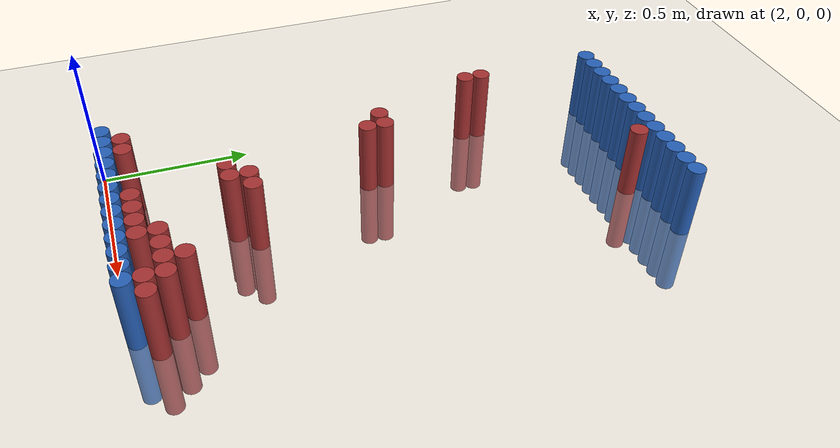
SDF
<sdf version="1.6">
 <world name="default">
  <model name="ground_plane">
   <static>1</static>
   <link name="link">
    <collision name="collision">
     <geometry><plane><normal>0 0 1</normal><size>100 100</size></plane></geometry>
     <surface><friction><ode><mu>100</mu><mu2>50</mu2></ode></friction></surface>
    </collision>
    <visual name="visual">
     <cast_shadows>0</cast_shadows>
     <geometry><plane><normal>0 0 1</normal><size>100 100</size></plane></geometry>
     <material>
      <script><uri>file://media/materials/scripts/gazebo.material</uri><name>Gazebo/Grey</name></script>
     </material>
    </visual>
   </link>
  </model>
  <model name="unit_cylinder_96">
   <static>1</static>
   <pose>2.130000 1.770000 0.000000 0.000000 0.000000 0.000000</pose>
   <link name="link">
    <inertial>
     <mass>1</mass>
     <inertia><ixx>0.145833</ixx><ixy>0</ixy><ixz>0</ixz><iyy>0.145833</iyy><iyz>0</iyz><izz>0.125</izz></inertia>
    </inertial>
    <collision name="collision">
     <geometry><cylinder><radius>0.030000</radius><length>0.5</length></cylinder></geometry>
    </collision>
    <visual name="visual">
     <geometry><cylinder><radius>0.030000</radius><length>0.5</length></cylinder></geometry>
     <material>
      <ambient>0.152000 0.379000 0.720000 1</ambient>
      <diffuse>0.152000 0.379000 0.720000 1</diffuse>
     </material>
     <material>
      <script><name>Gazebo/Grey</name><uri>file://media/materials/scripts/gazebo.material</uri></script>
     </material>
    </visual>
   </link>
  </model>
  <model name="unit_cylinder_97">
   <static>1</static>
   <pose>2.190000 1.770000 0.000000 0.000000 0.000000 0.000000</pose>
   <link name="link">
    <inertial>
     <mass>1</mass>
     <inertia><ixx>0.145833</ixx><ixy>0</ixy><ixz>0</ixz><iyy>0.145833</iyy><iyz>0</iyz><izz>0.125</izz></inertia>
    </inertial>
    <collision name="collision">
     <geometry><cylinder><radius>0.030000</radius><length>0.5</length></cylinder></geometry>
    </collision>
    <visual name="visual">
     <geometry><cylinder><radius>0.030000</radius><length>0.5</length></cylinder></geometry>
     <material>
      <ambient>0.152000 0.379000 0.720000 1</ambient>
      <diffuse>0.152000 0.379000 0.720000 1</diffuse>
     </material>
     <material>
      <script><name>Gazebo/Grey</name><uri>file://media/materials/scripts/gazebo.material</uri></script>
     </material>
    </visual>
   </link>
  </model>
  <model name="unit_cylinder_98">
   <static>1</static>
   <pose>2.250000 1.770000 0.000000 0.000000 0.000000 0.000000</pose>
   <link name="link">
    <inertial>
     <mass>1</mass>
     <inertia><ixx>0.145833</ixx><ixy>0</ixy><ixz>0</ixz><iyy>0.145833</iyy><iyz>0</iyz><izz>0.125</izz></inertia>
    </inertial>
    <collision name="collision">
     <geometry><cylinder><radius>0.030000</radius><length>0.5</length></cylinder></geometry>
    </collision>
    <visual name="visual">
     <geometry><cylinder><radius>0.030000</radius><length>0.5</length></cylinder></geometry>
     <material>
      <ambient>0.152000 0.379000 0.720000 1</ambient>
      <diffuse>0.152000 0.379000 0.720000 1</diffuse>
     </material>
     <material>
      <script><name>Gazebo/Grey</name><uri>file://media/materials/scripts/gazebo.material</uri></script>
     </material>
    </visual>
   </link>
  </model>
  <model name="unit_cylinder_99">
   <static>1</static>
   <pose>2.310000 1.770000 0.000000 0.000000 0.000000 0.000000</pose>
   <link name="link">
    <inertial>
     <mass>1</mass>
     <inertia><ixx>0.145833</ixx><ixy>0</ixy><ixz>0</ixz><iyy>0.145833</iyy><iyz>0</iyz><izz>0.125</izz></inertia>
    </inertial>
    <collision name="collision">
     <geometry><cylinder><radius>0.030000</radius><length>0.5</length></cylinder></geometry>
    </collision>
    <visual name="visual">
     <geometry><cylinder><radius>0.030000</radius><length>0.5</length></cylinder></geometry>
     <material>
      <ambient>0.152000 0.379000 0.720000 1</ambient>
      <diffuse>0.152000 0.379000 0.720000 1</diffuse>
     </material>
     <material>
      <script><name>Gazebo/Grey</name><uri>file://media/materials/scripts/gazebo.material</uri></script>
     </material>
    </visual>
   </link>
  </model>
  <model name="unit_cylinder_100">
   <static>1</static>
   <pose>2.370000 1.770000 0.000000 0.000000 0.000000 0.000000</pose>
   <link name="link">
    <inertial>
     <mass>1</mass>
     <inertia><ixx>0.145833</ixx><ixy>0</ixy><ixz>0</ixz><iyy>0.145833</iyy><iyz>0</iyz><izz>0.125</izz></inertia>
    </inertial>
    <collision name="collision">
     <geometry><cylinder><radius>0.030000</radius><length>0.5</length></cylinder></geometry>
    </collision>
    <visual name="visual">
     <geometry><cylinder><radius>0.030000</radius><length>0.5</length></cylinder></geometry>
     <material>
      <ambient>0.152000 0.379000 0.720000 1</ambient>
      <diffuse>0.152000 0.379000 0.720000 1</diffuse>
     </material>
     <material>
      <script><name>Gazebo/Grey</name><uri>file://media/materials/scripts/gazebo.material</uri></script>
     </material>
    </visual>
   </link>
  </model>
  <model name="unit_cylinder_101">
   <static>1</static>
   <pose>2.430000 1.770000 0.000000 0.000000 0.000000 0.000000</pose>
   <link name="link">
    <inertial>
     <mass>1</mass>
     <inertia><ixx>0.145833</ixx><ixy>0</ixy><ixz>0</ixz><iyy>0.145833</iyy><iyz>0</iyz><izz>0.125</izz></inertia>
    </inertial>
    <collision name="collision">
     <geometry><cylinder><radius>0.030000</radius><length>0.5</length></cylinder></geometry>
    </collision>
    <visual name="visual">
     <geometry><cylinder><radius>0.030000</radius><length>0.5</length></cylinder></geometry>
     <material>
      <ambient>0.152000 0.379000 0.720000 1</ambient>
      <diffuse>0.152000 0.379000 0.720000 1</diffuse>
     </material>
     <material>
      <script><name>Gazebo/Grey</name><uri>file://media/materials/scripts/gazebo.material</uri></script>
     </material>
    </visual>
   </link>
  </model>
  <model name="unit_cylinder_102">
   <static>1</static>
   <pose>2.490000 1.770000 0.000000 0.000000 0.000000 0.000000</pose>
   <link name="link">
    <inertial>
     <mass>1</mass>
     <inertia><ixx>0.145833</ixx><ixy>0</ixy><ixz>0</ixz><iyy>0.145833</iyy><iyz>0</iyz><izz>0.125</izz></inertia>
    </inertial>
    <collision name="collision">
     <geometry><cylinder><radius>0.030000</radius><length>0.5</length></cylinder></geometry>
    </collision>
    <visual name="visual">
     <geometry><cylinder><radius>0.030000</radius><length>0.5</length></cylinder></geometry>
     <material>
      <ambient>0.152000 0.379000 0.720000 1</ambient>
      <diffuse>0.152000 0.379000 0.720000 1</diffuse>
     </material>
     <material>
      <script><name>Gazebo/Grey</name><uri>file://media/materials/scripts/gazebo.material</uri></script>
     </material>
    </visual>
   </link>
  </model>
  <model name="unit_cylinder_103">
   <static>1</static>
   <pose>2.550000 1.770000 0.000000 0.000000 0.000000 0.000000</pose>
   <link name="link">
    <inertial>
     <mass>1</mass>
     <inertia><ixx>0.145833</ixx><ixy>0</ixy><ixz>0</ixz><iyy>0.145833</iyy><iyz>0</iyz><izz>0.125</izz></inertia>
    </inertial>
    <collision name="collision">
     <geometry><cylinder><radius>0.030000</radius><length>0.5</length></cylinder></geometry>
    </collision>
    <visual name="visual">
     <geometry><cylinder><radius>0.030000</radius><length>0.5</length></cylinder></geometry>
     <material>
      <ambient>0.152000 0.379000 0.720000 1</ambient>
      <diffuse>0.152000 0.379000 0.720000 1</diffuse>
     </material>
     <material>
      <script><name>Gazebo/Grey</name><uri>file://media/materials/scripts/gazebo.material</uri></script>
     </material>
    </visual>
   </link>
  </model>
  <model name="unit_cylinder_104">
   <static>1</static>
   <pose>2.610000 1.770000 0.000000 0.000000 0.000000 0.000000</pose>
   <link name="link">
    <inertial>
     <mass>1</mass>
     <inertia><ixx>0.145833</ixx><ixy>0</ixy><ixz>0</ixz><iyy>0.145833</iyy><iyz>0</iyz><izz>0.125</izz></inertia>
    </inertial>
    <collision name="collision">
     <geometry><cylinder><radius>0.030000</radius><length>0.5</length></cylinder></geometry>
    </collision>
    <visual name="visual">
     <geometry><cylinder><radius>0.030000</radius><length>0.5</length></cylinder></geometry>
     <material>
      <ambient>0.152000 0.379000 0.720000 1</ambient>
      <diffuse>0.152000 0.379000 0.720000 1</diffuse>
     </material>
     <material>
      <script><name>Gazebo/Grey</name><uri>file://media/materials/scripts/gazebo.material</uri></script>
     </material>
    </visual>
   </link>
  </model>
  <model name="unit_cylinder_105">
   <static>1</static>
   <pose>2.670000 1.770000 0.000000 0.000000 0.000000 0.000000</pose>
   <link name="link">
    <inertial>
     <mass>1</mass>
     <inertia><ixx>0.145833</ixx><ixy>0</ixy><ixz>0</ixz><iyy>0.145833</iyy><iyz>0</iyz><izz>0.125</izz></inertia>
    </inertial>
    <collision name="collision">
     <geometry><cylinder><radius>0.030000</radius><length>0.5</length></cylinder></geometry>
    </collision>
    <visual name="visual">
     <geometry><cylinder><radius>0.030000</radius><length>0.5</length></cylinder></geometry>
     <material>
      <ambient>0.152000 0.379000 0.720000 1</ambient>
      <diffuse>0.152000 0.379000 0.720000 1</diffuse>
     </material>
     <material>
      <script><name>Gazebo/Grey</name><uri>file://media/materials/scripts/gazebo.material</uri></script>
     </material>
    </visual>
   </link>
  </model>
  <model name="unit_cylinder_106">
   <static>1</static>
   <pose>2.730000 1.770000 0.000000 0.000000 0.000000 0.000000</pose>
   <link name="link">
    <inertial>
     <mass>1</mass>
     <inertia><ixx>0.145833</ixx><ixy>0</ixy><ixz>0</ixz><iyy>0.145833</iyy><iyz>0</iyz><izz>0.125</izz></inertia>
    </inertial>
    <collision name="collision">
     <geometry><cylinder><radius>0.030000</radius><length>0.5</length></cylinder></geometry>
    </collision>
    <visual name="visual">
     <geometry><cylinder><radius>0.030000</radius><length>0.5</length></cylinder></geometry>
     <material>
      <ambient>0.152000 0.379000 0.720000 1</ambient>
      <diffuse>0.152000 0.379000 0.720000 1</diffuse>
     </material>
     <material>
      <script><name>Gazebo/Grey</name><uri>file://media/materials/scripts/gazebo.material</uri></script>
     </material>
    </visual>
   </link>
  </model>
  <model name="unit_cylinder_107">
   <static>1</static>
   <pose>2.790000 1.770000 0.000000 0.000000 0.000000 0.000000</pose>
   <link name="link">
    <inertial>
     <mass>1</mass>
     <inertia><ixx>0.145833</ixx><ixy>0</ixy><ixz>0</ixz><iyy>0.145833</iyy><iyz>0</iyz><izz>0.125</izz></inertia>
    </inertial>
    <collision name="collision">
     <geometry><cylinder><radius>0.030000</radius><length>0.5</length></cylinder></geometry>
    </collision>
    <visual name="visual">
     <geometry><cylinder><radius>0.030000</radius><length>0.5</length></cylinder></geometry>
     <material>
      <ambient>0.152000 0.379000 0.720000 1</ambient>
      <diffuse>0.152000 0.379000 0.720000 1</diffuse>
     </material>
     <material>
      <script><name>Gazebo/Grey</name><uri>file://media/materials/scripts/gazebo.material</uri></script>
     </material>
    </visual>
   </link>
  </model>
  <model name="unit_cylinder_108">
   <static>1</static>
   <pose>2.850000 1.770000 0.000000 0.000000 0.000000 0.000000</pose>
   <link name="link">
    <inertial>
     <mass>1</mass>
     <inertia><ixx>0.145833</ixx><ixy>0</ixy><ixz>0</ixz><iyy>0.145833</iyy><iyz>0</iyz><izz>0.125</izz></inertia>
    </inertial>
    <collision name="collision">
     <geometry><cylinder><radius>0.030000</radius><length>0.5</length></cylinder></geometry>
    </collision>
    <visual name="visual">
     <geometry><cylinder><radius>0.030000</radius><length>0.5</length></cylinder></geometry>
     <material>
      <ambient>0.152000 0.379000 0.720000 1</ambient>
      <diffuse>0.152000 0.379000 0.720000 1</diffuse>
     </material>
     <material>
      <script><name>Gazebo/Grey</name><uri>file://media/materials/scripts/gazebo.material</uri></script>
     </material>
    </visual>
   </link>
  </model>
  <model name="unit_cylinder_125">
   <static>1</static>
   <pose>2.610000 1.710000 0.000000 0.000000 0.000000 0.000000</pose>
   <link name="link">
    <inertial>
     <mass>1</mass>
     <inertia><ixx>0.145833</ixx><ixy>0</ixy><ixz>0</ixz><iyy>0.145833</iyy><iyz>0</iyz><izz>0.125</izz></inertia>
    </inertial>
    <collision name="collision">
     <geometry><cylinder><radius>0.030000</radius><length>0.5</length></cylinder></geometry>
    </collision>
    <visual name="visual">
     <geometry><cylinder><radius>0.030000</radius><length>0.5</length></cylinder></geometry>
     <material>
      <ambient>0.648000 0.192000 0.192000 1</ambient>
      <diffuse>0.648000 0.192000 0.192000 1</diffuse>
     </material>
     <material>
      <script><name>Gazebo/Grey</name><uri>file://media/materials/scripts/gazebo.material</uri></script>
     </material>
    </visual>
   </link>
  </model>
  <model name="unit_cylinder_146">
   <static>1</static>
   <pose>2.130000 1.350000 0.000000 0.000000 0.000000 0.000000</pose>
   <link name="link">
    <inertial>
     <mass>1</mass>
     <inertia><ixx>0.145833</ixx><ixy>0</ixy><ixz>0</ixz><iyy>0.145833</iyy><iyz>0</iyz><izz>0.125</izz></inertia>
    </inertial>
    <collision name="collision">
     <geometry><cylinder><radius>0.030000</radius><length>0.5</length></cylinder></geometry>
    </collision>
    <visual name="visual">
     <geometry><cylinder><radius>0.030000</radius><length>0.5</length></cylinder></geometry>
     <material>
      <ambient>0.648000 0.192000 0.192000 1</ambient>
      <diffuse>0.648000 0.192000 0.192000 1</diffuse>
     </material>
     <material>
      <script><name>Gazebo/Grey</name><uri>file://media/materials/scripts/gazebo.material</uri></script>
     </material>
    </visual>
   </link>
  </model>
  <model name="unit_cylinder_147">
   <static>1</static>
   <pose>2.130000 1.290000 0.000000 0.000000 0.000000 0.000000</pose>
   <link name="link">
    <inertial>
     <mass>1</mass>
     <inertia><ixx>0.145833</ixx><ixy>0</ixy><ixz>0</ixz><iyy>0.145833</iyy><iyz>0</iyz><izz>0.125</izz></inertia>
    </inertial>
    <collision name="collision">
     <geometry><cylinder><radius>0.030000</radius><length>0.5</length></cylinder></geometry>
    </collision>
    <visual name="visual">
     <geometry><cylinder><radius>0.030000</radius><length>0.5</length></cylinder></geometry>
     <material>
      <ambient>0.648000 0.192000 0.192000 1</ambient>
      <diffuse>0.648000 0.192000 0.192000 1</diffuse>
     </material>
     <material>
      <script><name>Gazebo/Grey</name><uri>file://media/materials/scripts/gazebo.material</uri></script>
     </material>
    </visual>
   </link>
  </model>
  <model name="unit_cylinder_156">
   <static>1</static>
   <pose>2.250000 0.930000 0.000000 0.000000 0.000000 0.000000</pose>
   <link name="link">
    <inertial>
     <mass>1</mass>
     <inertia><ixx>0.145833</ixx><ixy>0</ixy><ixz>0</ixz><iyy>0.145833</iyy><iyz>0</iyz><izz>0.125</izz></inertia>
    </inertial>
    <collision name="collision">
     <geometry><cylinder><radius>0.030000</radius><length>0.5</length></cylinder></geometry>
    </collision>
    <visual name="visual">
     <geometry><cylinder><radius>0.030000</radius><length>0.5</length></cylinder></geometry>
     <material>
      <ambient>0.648000 0.192000 0.192000 1</ambient>
      <diffuse>0.648000 0.192000 0.192000 1</diffuse>
     </material>
     <material>
      <script><name>Gazebo/Grey</name><uri>file://media/materials/scripts/gazebo.material</uri></script>
     </material>
    </visual>
   </link>
  </model>
  <model name="unit_cylinder_157">
   <static>1</static>
   <pose>2.310000 0.930000 0.000000 0.000000 0.000000 0.000000</pose>
   <link name="link">
    <inertial>
     <mass>1</mass>
     <inertia><ixx>0.145833</ixx><ixy>0</ixy><ixz>0</ixz><iyy>0.145833</iyy><iyz>0</iyz><izz>0.125</izz></inertia>
    </inertial>
    <collision name="collision">
     <geometry><cylinder><radius>0.030000</radius><length>0.5</length></cylinder></geometry>
    </collision>
    <visual name="visual">
     <geometry><cylinder><radius>0.030000</radius><length>0.5</length></cylinder></geometry>
     <material>
      <ambient>0.648000 0.192000 0.192000 1</ambient>
      <diffuse>0.648000 0.192000 0.192000 1</diffuse>
     </material>
     <material>
      <script><name>Gazebo/Grey</name><uri>file://media/materials/scripts/gazebo.material</uri></script>
     </material>
    </visual>
   </link>
  </model>
  <model name="unit_cylinder_158">
   <static>1</static>
   <pose>2.310000 0.870000 0.000000 0.000000 0.000000 0.000000</pose>
   <link name="link">
    <inertial>
     <mass>1</mass>
     <inertia><ixx>0.145833</ixx><ixy>0</ixy><ixz>0</ixz><iyy>0.145833</iyy><iyz>0</iyz><izz>0.125</izz></inertia>
    </inertial>
    <collision name="collision">
     <geometry><cylinder><radius>0.030000</radius><length>0.5</length></cylinder></geometry>
    </collision>
    <visual name="visual">
     <geometry><cylinder><radius>0.030000</radius><length>0.5</length></cylinder></geometry>
     <material>
      <ambient>0.648000 0.192000 0.192000 1</ambient>
      <diffuse>0.648000 0.192000 0.192000 1</diffuse>
     </material>
     <material>
      <script><name>Gazebo/Grey</name><uri>file://media/materials/scripts/gazebo.material</uri></script>
     </material>
    </visual>
   </link>
  </model>
  <model name="unit_cylinder_183">
   <static>1</static>
   <pose>2.430000 0.450000 0.000000 0.000000 0.000000 0.000000</pose>
   <link name="link">
    <inertial>
     <mass>1</mass>
     <inertia><ixx>0.145833</ixx><ixy>0</ixy><ixz>0</ixz><iyy>0.145833</iyy><iyz>0</iyz><izz>0.125</izz></inertia>
    </inertial>
    <collision name="collision">
     <geometry><cylinder><radius>0.030000</radius><length>0.5</length></cylinder></geometry>
    </collision>
    <visual name="visual">
     <geometry><cylinder><radius>0.030000</radius><length>0.5</length></cylinder></geometry>
     <material>
      <ambient>0.648000 0.192000 0.192000 1</ambient>
      <diffuse>0.648000 0.192000 0.192000 1</diffuse>
     </material>
     <material>
      <script><name>Gazebo/Grey</name><uri>file://media/materials/scripts/gazebo.material</uri></script>
     </material>
    </visual>
   </link>
  </model>
  <model name="unit_cylinder_184">
   <static>1</static>
   <pose>2.490000 0.450000 0.000000 0.000000 0.000000 0.000000</pose>
   <link name="link">
    <inertial>
     <mass>1</mass>
     <inertia><ixx>0.145833</ixx><ixy>0</ixy><ixz>0</ixz><iyy>0.145833</iyy><iyz>0</iyz><izz>0.125</izz></inertia>
    </inertial>
    <collision name="collision">
     <geometry><cylinder><radius>0.030000</radius><length>0.5</length></cylinder></geometry>
    </collision>
    <visual name="visual">
     <geometry><cylinder><radius>0.030000</radius><length>0.5</length></cylinder></geometry>
     <material>
      <ambient>0.648000 0.192000 0.192000 1</ambient>
      <diffuse>0.648000 0.192000 0.192000 1</diffuse>
     </material>
     <material>
      <script><name>Gazebo/Grey</name><uri>file://media/materials/scripts/gazebo.material</uri></script>
     </material>
    </visual>
   </link>
  </model>
  <model name="unit_cylinder_185">
   <static>1</static>
   <pose>2.370000 0.390000 0.000000 0.000000 0.000000 0.000000</pose>
   <link name="link">
    <inertial>
     <mass>1</mass>
     <inertia><ixx>0.145833</ixx><ixy>0</ixy><ixz>0</ixz><iyy>0.145833</iyy><iyz>0</iyz><izz>0.125</izz></inertia>
    </inertial>
    <collision name="collision">
     <geometry><cylinder><radius>0.030000</radius><length>0.5</length></cylinder></geometry>
    </collision>
    <visual name="visual">
     <geometry><cylinder><radius>0.030000</radius><length>0.5</length></cylinder></geometry>
     <material>
      <ambient>0.648000 0.192000 0.192000 1</ambient>
      <diffuse>0.648000 0.192000 0.192000 1</diffuse>
     </material>
     <material>
      <script><name>Gazebo/Grey</name><uri>file://media/materials/scripts/gazebo.material</uri></script>
     </material>
    </visual>
   </link>
  </model>
  <model name="unit_cylinder_186">
   <static>1</static>
   <pose>2.430000 0.390000 0.000000 0.000000 0.000000 0.000000</pose>
   <link name="link">
    <inertial>
     <mass>1</mass>
     <inertia><ixx>0.145833</ixx><ixy>0</ixy><ixz>0</ixz><iyy>0.145833</iyy><iyz>0</iyz><izz>0.125</izz></inertia>
    </inertial>
    <collision name="collision">
     <geometry><cylinder><radius>0.030000</radius><length>0.5</length></cylinder></geometry>
    </collision>
    <visual name="visual">
     <geometry><cylinder><radius>0.030000</radius><length>0.5</length></cylinder></geometry>
     <material>
      <ambient>0.648000 0.192000 0.192000 1</ambient>
      <diffuse>0.648000 0.192000 0.192000 1</diffuse>
     </material>
     <material>
      <script><name>Gazebo/Grey</name><uri>file://media/materials/scripts/gazebo.material</uri></script>
     </material>
    </visual>
   </link>
  </model>
  <model name="unit_cylinder_187">
   <static>1</static>
   <pose>2.730000 0.210000 0.000000 0.000000 0.000000 0.000000</pose>
   <link name="link">
    <inertial>
     <mass>1</mass>
     <inertia><ixx>0.145833</ixx><ixy>0</ixy><ixz>0</ixz><iyy>0.145833</iyy><iyz>0</iyz><izz>0.125</izz></inertia>
    </inertial>
    <collision name="collision">
     <geometry><cylinder><radius>0.030000</radius><length>0.5</length></cylinder></geometry>
    </collision>
    <visual name="visual">
     <geometry><cylinder><radius>0.030000</radius><length>0.5</length></cylinder></geometry>
     <material>
      <ambient>0.648000 0.192000 0.192000 1</ambient>
      <diffuse>0.648000 0.192000 0.192000 1</diffuse>
     </material>
     <material>
      <script><name>Gazebo/Grey</name><uri>file://media/materials/scripts/gazebo.material</uri></script>
     </material>
    </visual>
   </link>
  </model>
  <model name="unit_cylinder_189">
   <static>1</static>
   <pose>2.610000 0.150000 0.000000 0.000000 0.000000 0.000000</pose>
   <link name="link">
    <inertial>
     <mass>1</mass>
     <inertia><ixx>0.145833</ixx><ixy>0</ixy><ixz>0</ixz><iyy>0.145833</iyy><iyz>0</iyz><izz>0.125</izz></inertia>
    </inertial>
    <collision name="collision">
     <geometry><cylinder><radius>0.030000</radius><length>0.5</length></cylinder></geometry>
    </collision>
    <visual name="visual">
     <geometry><cylinder><radius>0.030000</radius><length>0.5</length></cylinder></geometry>
     <material>
      <ambient>0.648000 0.192000 0.192000 1</ambient>
      <diffuse>0.648000 0.192000 0.192000 1</diffuse>
     </material>
     <material>
      <script><name>Gazebo/Grey</name><uri>file://media/materials/scripts/gazebo.material</uri></script>
     </material>
    </visual>
   </link>
  </model>
  <model name="unit_cylinder_190">
   <static>1</static>
   <pose>2.670000 0.150000 0.000000 0.000000 0.000000 0.000000</pose>
   <link name="link">
    <inertial>
     <mass>1</mass>
     <inertia><ixx>0.145833</ixx><ixy>0</ixy><ixz>0</ixz><iyy>0.145833</iyy><iyz>0</iyz><izz>0.125</izz></inertia>
    </inertial>
    <collision name="collision">
     <geometry><cylinder><radius>0.030000</radius><length>0.5</length></cylinder></geometry>
    </collision>
    <visual name="visual">
     <geometry><cylinder><radius>0.030000</radius><length>0.5</length></cylinder></geometry>
     <material>
      <ambient>0.648000 0.192000 0.192000 1</ambient>
      <diffuse>0.648000 0.192000 0.192000 1</diffuse>
     </material>
     <material>
      <script><name>Gazebo/Grey</name><uri>file://media/materials/scripts/gazebo.material</uri></script>
     </material>
    </visual>
   </link>
  </model>
  <model name="unit_cylinder_191">
   <static>1</static>
   <pose>2.730000 0.150000 0.000000 0.000000 0.000000 0.000000</pose>
   <link name="link">
    <inertial>
     <mass>1</mass>
     <inertia><ixx>0.145833</ixx><ixy>0</ixy><ixz>0</ixz><iyy>0.145833</iyy><iyz>0</iyz><izz>0.125</izz></inertia>
    </inertial>
    <collision name="collision">
     <geometry><cylinder><radius>0.030000</radius><length>0.5</length></cylinder></geometry>
    </collision>
    <visual name="visual">
     <geometry><cylinder><radius>0.030000</radius><length>0.5</length></cylinder></geometry>
     <material>
      <ambient>0.648000 0.192000 0.192000 1</ambient>
      <diffuse>0.648000 0.192000 0.192000 1</diffuse>
     </material>
     <material>
      <script><name>Gazebo/Grey</name><uri>file://media/materials/scripts/gazebo.material</uri></script>
     </material>
    </visual>
   </link>
  </model>
  <model name="unit_cylinder_192">
   <static>1</static>
   <pose>2.790000 0.150000 0.000000 0.000000 0.000000 0.000000</pose>
   <link name="link">
    <inertial>
     <mass>1</mass>
     <inertia><ixx>0.145833</ixx><ixy>0</ixy><ixz>0</ixz><iyy>0.145833</iyy><iyz>0</iyz><izz>0.125</izz></inertia>
    </inertial>
    <collision name="collision">
     <geometry><cylinder><radius>0.030000</radius><length>0.5</length></cylinder></geometry>
    </collision>
    <visual name="visual">
     <geometry><cylinder><radius>0.030000</radius><length>0.5</length></cylinder></geometry>
     <material>
      <ambient>0.648000 0.192000 0.192000 1</ambient>
      <diffuse>0.648000 0.192000 0.192000 1</diffuse>
     </material>
     <material>
      <script><name>Gazebo/Grey</name><uri>file://media/materials/scripts/gazebo.material</uri></script>
     </material>
    </visual>
   </link>
  </model>
  <model name="unit_cylinder_197">
   <static>1</static>
   <pose>2.130000 0.090000 0.000000 0.000000 0.000000 0.000000</pose>
   <link name="link">
    <inertial>
     <mass>1</mass>
     <inertia><ixx>0.145833</ixx><ixy>0</ixy><ixz>0</ixz><iyy>0.145833</iyy><iyz>0</iyz><izz>0.125</izz></inertia>
    </inertial>
    <collision name="collision">
     <geometry><cylinder><radius>0.030000</radius><length>0.5</length></cylinder></geometry>
    </collision>
    <visual name="visual">
     <geometry><cylinder><radius>0.030000</radius><length>0.5</length></cylinder></geometry>
     <material>
      <ambient>0.648000 0.192000 0.192000 1</ambient>
      <diffuse>0.648000 0.192000 0.192000 1</diffuse>
     </material>
     <material>
      <script><name>Gazebo/Grey</name><uri>file://media/materials/scripts/gazebo.material</uri></script>
     </material>
    </visual>
   </link>
  </model>
  <model name="unit_cylinder_198">
   <static>1</static>
   <pose>2.190000 0.090000 0.000000 0.000000 0.000000 0.000000</pose>
   <link name="link">
    <inertial>
     <mass>1</mass>
     <inertia><ixx>0.145833</ixx><ixy>0</ixy><ixz>0</ixz><iyy>0.145833</iyy><iyz>0</iyz><izz>0.125</izz></inertia>
    </inertial>
    <collision name="collision">
     <geometry><cylinder><radius>0.030000</radius><length>0.5</length></cylinder></geometry>
    </collision>
    <visual name="visual">
     <geometry><cylinder><radius>0.030000</radius><length>0.5</length></cylinder></geometry>
     <material>
      <ambient>0.648000 0.192000 0.192000 1</ambient>
      <diffuse>0.648000 0.192000 0.192000 1</diffuse>
     </material>
     <material>
      <script><name>Gazebo/Grey</name><uri>file://media/materials/scripts/gazebo.material</uri></script>
     </material>
    </visual>
   </link>
  </model>
  <model name="unit_cylinder_199">
   <static>1</static>
   <pose>2.430000 0.090000 0.000000 0.000000 0.000000 0.000000</pose>
   <link name="link">
    <inertial>
     <mass>1</mass>
     <inertia><ixx>0.145833</ixx><ixy>0</ixy><ixz>0</ixz><iyy>0.145833</iyy><iyz>0</iyz><izz>0.125</izz></inertia>
    </inertial>
    <collision name="collision">
     <geometry><cylinder><radius>0.030000</radius><length>0.5</length></cylinder></geometry>
    </collision>
    <visual name="visual">
     <geometry><cylinder><radius>0.030000</radius><length>0.5</length></cylinder></geometry>
     <material>
      <ambient>0.648000 0.192000 0.192000 1</ambient>
      <diffuse>0.648000 0.192000 0.192000 1</diffuse>
     </material>
     <material>
      <script><name>Gazebo/Grey</name><uri>file://media/materials/scripts/gazebo.material</uri></script>
     </material>
    </visual>
   </link>
  </model>
  <model name="unit_cylinder_200">
   <static>1</static>
   <pose>2.490000 0.090000 0.000000 0.000000 0.000000 0.000000</pose>
   <link name="link">
    <inertial>
     <mass>1</mass>
     <inertia><ixx>0.145833</ixx><ixy>0</ixy><ixz>0</ixz><iyy>0.145833</iyy><iyz>0</iyz><izz>0.125</izz></inertia>
    </inertial>
    <collision name="collision">
     <geometry><cylinder><radius>0.030000</radius><length>0.5</length></cylinder></geometry>
    </collision>
    <visual name="visual">
     <geometry><cylinder><radius>0.030000</radius><length>0.5</length></cylinder></geometry>
     <material>
      <ambient>0.648000 0.192000 0.192000 1</ambient>
      <diffuse>0.648000 0.192000 0.192000 1</diffuse>
     </material>
     <material>
      <script><name>Gazebo/Grey</name><uri>file://media/materials/scripts/gazebo.material</uri></script>
     </material>
    </visual>
   </link>
  </model>
  <model name="unit_cylinder_201">
   <static>1</static>
   <pose>2.550000 0.090000 0.000000 0.000000 0.000000 0.000000</pose>
   <link name="link">
    <inertial>
     <mass>1</mass>
     <inertia><ixx>0.145833</ixx><ixy>0</ixy><ixz>0</ixz><iyy>0.145833</iyy><iyz>0</iyz><izz>0.125</izz></inertia>
    </inertial>
    <collision name="collision">
     <geometry><cylinder><radius>0.030000</radius><length>0.5</length></cylinder></geometry>
    </collision>
    <visual name="visual">
     <geometry><cylinder><radius>0.030000</radius><length>0.5</length></cylinder></geometry>
     <material>
      <ambient>0.648000 0.192000 0.192000 1</ambient>
      <diffuse>0.648000 0.192000 0.192000 1</diffuse>
     </material>
     <material>
      <script><name>Gazebo/Grey</name><uri>file://media/materials/scripts/gazebo.material</uri></script>
     </material>
    </visual>
   </link>
  </model>
  <model name="unit_cylinder_202">
   <static>1</static>
   <pose>2.610000 0.090000 0.000000 0.000000 0.000000 0.000000</pose>
   <link name="link">
    <inertial>
     <mass>1</mass>
     <inertia><ixx>0.145833</ixx><ixy>0</ixy><ixz>0</ixz><iyy>0.145833</iyy><iyz>0</iyz><izz>0.125</izz></inertia>
    </inertial>
    <collision name="collision">
     <geometry><cylinder><radius>0.030000</radius><length>0.5</length></cylinder></geometry>
    </collision>
    <visual name="visual">
     <geometry><cylinder><radius>0.030000</radius><length>0.5</length></cylinder></geometry>
     <material>
      <ambient>0.648000 0.192000 0.192000 1</ambient>
      <diffuse>0.648000 0.192000 0.192000 1</diffuse>
     </material>
     <material>
      <script><name>Gazebo/Grey</name><uri>file://media/materials/scripts/gazebo.material</uri></script>
     </material>
    </visual>
   </link>
  </model>
  <model name="unit_cylinder_203">
   <static>1</static>
   <pose>2.790000 0.090000 0.000000 0.000000 0.000000 0.000000</pose>
   <link name="link">
    <inertial>
     <mass>1</mass>
     <inertia><ixx>0.145833</ixx><ixy>0</ixy><ixz>0</ixz><iyy>0.145833</iyy><iyz>0</iyz><izz>0.125</izz></inertia>
    </inertial>
    <collision name="collision">
     <geometry><cylinder><radius>0.030000</radius><length>0.5</length></cylinder></geometry>
    </collision>
    <visual name="visual">
     <geometry><cylinder><radius>0.030000</radius><length>0.5</length></cylinder></geometry>
     <material>
      <ambient>0.648000 0.192000 0.192000 1</ambient>
      <diffuse>0.648000 0.192000 0.192000 1</diffuse>
     </material>
     <material>
      <script><name>Gazebo/Grey</name><uri>file://media/materials/scripts/gazebo.material</uri></script>
     </material>
    </visual>
   </link>
  </model>
  <model name="unit_cylinder_204">
   <static>1</static>
   <pose>2.850000 0.090000 0.000000 0.000000 0.000000 0.000000</pose>
   <link name="link">
    <inertial>
     <mass>1</mass>
     <inertia><ixx>0.145833</ixx><ixy>0</ixy><ixz>0</ixz><iyy>0.145833</iyy><iyz>0</iyz><izz>0.125</izz></inertia>
    </inertial>
    <collision name="collision">
     <geometry><cylinder><radius>0.030000</radius><length>0.5</length></cylinder></geometry>
    </collision>
    <visual name="visual">
     <geometry><cylinder><radius>0.030000</radius><length>0.5</length></cylinder></geometry>
     <material>
      <ambient>0.648000 0.192000 0.192000 1</ambient>
      <diffuse>0.648000 0.192000 0.192000 1</diffuse>
     </material>
     <material>
      <script><name>Gazebo/Grey</name><uri>file://media/materials/scripts/gazebo.material</uri></script>
     </material>
    </visual>
   </link>
  </model>
  <model name="unit_cylinder_215">
   <static>1</static>
   <pose>2.070000 0.030000 0.000000 0.000000 0.000000 0.000000</pose>
   <link name="link">
    <inertial>
     <mass>1</mass>
     <inertia><ixx>0.145833</ixx><ixy>0</ixy><ixz>0</ixz><iyy>0.145833</iyy><iyz>0</iyz><izz>0.125</izz></inertia>
    </inertial>
    <collision name="collision">
     <geometry><cylinder><radius>0.030000</radius><length>0.5</length></cylinder></geometry>
    </collision>
    <visual name="visual">
     <geometry><cylinder><radius>0.030000</radius><length>0.5</length></cylinder></geometry>
     <material>
      <ambient>0.152000 0.379000 0.720000 1</ambient>
      <diffuse>0.152000 0.379000 0.720000 1</diffuse>
     </material>
     <material>
      <script><name>Gazebo/Grey</name><uri>file://media/materials/scripts/gazebo.material</uri></script>
     </material>
    </visual>
   </link>
  </model>
  <model name="unit_cylinder_216">
   <static>1</static>
   <pose>2.130000 0.030000 0.000000 0.000000 0.000000 0.000000</pose>
   <link name="link">
    <inertial>
     <mass>1</mass>
     <inertia><ixx>0.145833</ixx><ixy>0</ixy><ixz>0</ixz><iyy>0.145833</iyy><iyz>0</iyz><izz>0.125</izz></inertia>
    </inertial>
    <collision name="collision">
     <geometry><cylinder><radius>0.030000</radius><length>0.5</length></cylinder></geometry>
    </collision>
    <visual name="visual">
     <geometry><cylinder><radius>0.030000</radius><length>0.5</length></cylinder></geometry>
     <material>
      <ambient>0.152000 0.379000 0.720000 1</ambient>
      <diffuse>0.152000 0.379000 0.720000 1</diffuse>
     </material>
     <material>
      <script><name>Gazebo/Grey</name><uri>file://media/materials/scripts/gazebo.material</uri></script>
     </material>
    </visual>
   </link>
  </model>
  <model name="unit_cylinder_217">
   <static>1</static>
   <pose>2.190000 0.030000 0.000000 0.000000 0.000000 0.000000</pose>
   <link name="link">
    <inertial>
     <mass>1</mass>
     <inertia><ixx>0.145833</ixx><ixy>0</ixy><ixz>0</ixz><iyy>0.145833</iyy><iyz>0</iyz><izz>0.125</izz></inertia>
    </inertial>
    <collision name="collision">
     <geometry><cylinder><radius>0.030000</radius><length>0.5</length></cylinder></geometry>
    </collision>
    <visual name="visual">
     <geometry><cylinder><radius>0.030000</radius><length>0.5</length></cylinder></geometry>
     <material>
      <ambient>0.152000 0.379000 0.720000 1</ambient>
      <diffuse>0.152000 0.379000 0.720000 1</diffuse>
     </material>
     <material>
      <script><name>Gazebo/Grey</name><uri>file://media/materials/scripts/gazebo.material</uri></script>
     </material>
    </visual>
   </link>
  </model>
  <model name="unit_cylinder_218">
   <static>1</static>
   <pose>2.250000 0.030000 0.000000 0.000000 0.000000 0.000000</pose>
   <link name="link">
    <inertial>
     <mass>1</mass>
     <inertia><ixx>0.145833</ixx><ixy>0</ixy><ixz>0</ixz><iyy>0.145833</iyy><iyz>0</iyz><izz>0.125</izz></inertia>
    </inertial>
    <collision name="collision">
     <geometry><cylinder><radius>0.030000</radius><length>0.5</length></cylinder></geometry>
    </collision>
    <visual name="visual">
     <geometry><cylinder><radius>0.030000</radius><length>0.5</length></cylinder></geometry>
     <material>
      <ambient>0.152000 0.379000 0.720000 1</ambient>
      <diffuse>0.152000 0.379000 0.720000 1</diffuse>
     </material>
     <material>
      <script><name>Gazebo/Grey</name><uri>file://media/materials/scripts/gazebo.material</uri></script>
     </material>
    </visual>
   </link>
  </model>
  <model name="unit_cylinder_219">
   <static>1</static>
   <pose>2.310000 0.030000 0.000000 0.000000 0.000000 0.000000</pose>
   <link name="link">
    <inertial>
     <mass>1</mass>
     <inertia><ixx>0.145833</ixx><ixy>0</ixy><ixz>0</ixz><iyy>0.145833</iyy><iyz>0</iyz><izz>0.125</izz></inertia>
    </inertial>
    <collision name="collision">
     <geometry><cylinder><radius>0.030000</radius><length>0.5</length></cylinder></geometry>
    </collision>
    <visual name="visual">
     <geometry><cylinder><radius>0.030000</radius><length>0.5</length></cylinder></geometry>
     <material>
      <ambient>0.152000 0.379000 0.720000 1</ambient>
      <diffuse>0.152000 0.379000 0.720000 1</diffuse>
     </material>
     <material>
      <script><name>Gazebo/Grey</name><uri>file://media/materials/scripts/gazebo.material</uri></script>
     </material>
    </visual>
   </link>
  </model>
  <model name="unit_cylinder_220">
   <static>1</static>
   <pose>2.370000 0.030000 0.000000 0.000000 0.000000 0.000000</pose>
   <link name="link">
    <inertial>
     <mass>1</mass>
     <inertia><ixx>0.145833</ixx><ixy>0</ixy><ixz>0</ixz><iyy>0.145833</iyy><iyz>0</iyz><izz>0.125</izz></inertia>
    </inertial>
    <collision name="collision">
     <geometry><cylinder><radius>0.030000</radius><length>0.5</length></cylinder></geometry>
    </collision>
    <visual name="visual">
     <geometry><cylinder><radius>0.030000</radius><length>0.5</length></cylinder></geometry>
     <material>
      <ambient>0.152000 0.379000 0.720000 1</ambient>
      <diffuse>0.152000 0.379000 0.720000 1</diffuse>
     </material>
     <material>
      <script><name>Gazebo/Grey</name><uri>file://media/materials/scripts/gazebo.material</uri></script>
     </material>
    </visual>
   </link>
  </model>
  <model name="unit_cylinder_221">
   <static>1</static>
   <pose>2.430000 0.030000 0.000000 0.000000 0.000000 0.000000</pose>
   <link name="link">
    <inertial>
     <mass>1</mass>
     <inertia><ixx>0.145833</ixx><ixy>0</ixy><ixz>0</ixz><iyy>0.145833</iyy><iyz>0</iyz><izz>0.125</izz></inertia>
    </inertial>
    <collision name="collision">
     <geometry><cylinder><radius>0.030000</radius><length>0.5</length></cylinder></geometry>
    </collision>
    <visual name="visual">
     <geometry><cylinder><radius>0.030000</radius><length>0.5</length></cylinder></geometry>
     <material>
      <ambient>0.152000 0.379000 0.720000 1</ambient>
      <diffuse>0.152000 0.379000 0.720000 1</diffuse>
     </material>
     <material>
      <script><name>Gazebo/Grey</name><uri>file://media/materials/scripts/gazebo.material</uri></script>
     </material>
    </visual>
   </link>
  </model>
  <model name="unit_cylinder_222">
   <static>1</static>
   <pose>2.490000 0.030000 0.000000 0.000000 0.000000 0.000000</pose>
   <link name="link">
    <inertial>
     <mass>1</mass>
     <inertia><ixx>0.145833</ixx><ixy>0</ixy><ixz>0</ixz><iyy>0.145833</iyy><iyz>0</iyz><izz>0.125</izz></inertia>
    </inertial>
    <collision name="collision">
     <geometry><cylinder><radius>0.030000</radius><length>0.5</length></cylinder></geometry>
    </collision>
    <visual name="visual">
     <geometry><cylinder><radius>0.030000</radius><length>0.5</length></cylinder></geometry>
     <material>
      <ambient>0.152000 0.379000 0.720000 1</ambient>
      <diffuse>0.152000 0.379000 0.720000 1</diffuse>
     </material>
     <material>
      <script><name>Gazebo/Grey</name><uri>file://media/materials/scripts/gazebo.material</uri></script>
     </material>
    </visual>
   </link>
  </model>
  <model name="unit_cylinder_223">
   <static>1</static>
   <pose>2.550000 0.030000 0.000000 0.000000 0.000000 0.000000</pose>
   <link name="link">
    <inertial>
     <mass>1</mass>
     <inertia><ixx>0.145833</ixx><ixy>0</ixy><ixz>0</ixz><iyy>0.145833</iyy><iyz>0</iyz><izz>0.125</izz></inertia>
    </inertial>
    <collision name="collision">
     <geometry><cylinder><radius>0.030000</radius><length>0.5</length></cylinder></geometry>
    </collision>
    <visual name="visual">
     <geometry><cylinder><radius>0.030000</radius><length>0.5</length></cylinder></geometry>
     <material>
      <ambient>0.152000 0.379000 0.720000 1</ambient>
      <diffuse>0.152000 0.379000 0.720000 1</diffuse>
     </material>
     <material>
      <script><name>Gazebo/Grey</name><uri>file://media/materials/scripts/gazebo.material</uri></script>
     </material>
    </visual>
   </link>
  </model>
  <model name="unit_cylinder_224">
   <static>1</static>
   <pose>2.610000 0.030000 0.000000 0.000000 0.000000 0.000000</pose>
   <link name="link">
    <inertial>
     <mass>1</mass>
     <inertia><ixx>0.145833</ixx><ixy>0</ixy><ixz>0</ixz><iyy>0.145833</iyy><iyz>0</iyz><izz>0.125</izz></inertia>
    </inertial>
    <collision name="collision">
     <geometry><cylinder><radius>0.030000</radius><length>0.5</length></cylinder></geometry>
    </collision>
    <visual name="visual">
     <geometry><cylinder><radius>0.030000</radius><length>0.5</length></cylinder></geometry>
     <material>
      <ambient>0.152000 0.379000 0.720000 1</ambient>
      <diffuse>0.152000 0.379000 0.720000 1</diffuse>
     </material>
     <material>
      <script><name>Gazebo/Grey</name><uri>file://media/materials/scripts/gazebo.material</uri></script>
     </material>
    </visual>
   </link>
  </model>
  <model name="unit_cylinder_225">
   <static>1</static>
   <pose>2.670000 0.030000 0.000000 0.000000 0.000000 0.000000</pose>
   <link name="link">
    <inertial>
     <mass>1</mass>
     <inertia><ixx>0.145833</ixx><ixy>0</ixy><ixz>0</ixz><iyy>0.145833</iyy><iyz>0</iyz><izz>0.125</izz></inertia>
    </inertial>
    <collision name="collision">
     <geometry><cylinder><radius>0.030000</radius><length>0.5</length></cylinder></geometry>
    </collision>
    <visual name="visual">
     <geometry><cylinder><radius>0.030000</radius><length>0.5</length></cylinder></geometry>
     <material>
      <ambient>0.152000 0.379000 0.720000 1</ambient>
      <diffuse>0.152000 0.379000 0.720000 1</diffuse>
     </material>
     <material>
      <script><name>Gazebo/Grey</name><uri>file://media/materials/scripts/gazebo.material</uri></script>
     </material>
    </visual>
   </link>
  </model>
  <model name="unit_cylinder_226">
   <static>1</static>
   <pose>2.730000 0.030000 0.000000 0.000000 0.000000 0.000000</pose>
   <link name="link">
    <inertial>
     <mass>1</mass>
     <inertia><ixx>0.145833</ixx><ixy>0</ixy><ixz>0</ixz><iyy>0.145833</iyy><iyz>0</iyz><izz>0.125</izz></inertia>
    </inertial>
    <collision name="collision">
     <geometry><cylinder><radius>0.030000</radius><length>0.5</length></cylinder></geometry>
    </collision>
    <visual name="visual">
     <geometry><cylinder><radius>0.030000</radius><length>0.5</length></cylinder></geometry>
     <material>
      <ambient>0.152000 0.379000 0.720000 1</ambient>
      <diffuse>0.152000 0.379000 0.720000 1</diffuse>
     </material>
     <material>
      <script><name>Gazebo/Grey</name><uri>file://media/materials/scripts/gazebo.material</uri></script>
     </material>
    </visual>
   </link>
  </model>
  <model name="unit_cylinder_227">
   <static>1</static>
   <pose>2.790000 0.030000 0.000000 0.000000 0.000000 0.000000</pose>
   <link name="link">
    <inertial>
     <mass>1</mass>
     <inertia><ixx>0.145833</ixx><ixy>0</ixy><ixz>0</ixz><iyy>0.145833</iyy><iyz>0</iyz><izz>0.125</izz></inertia>
    </inertial>
    <collision name="collision">
     <geometry><cylinder><radius>0.030000</radius><length>0.5</length></cylinder></geometry>
    </collision>
    <visual name="visual">
     <geometry><cylinder><radius>0.030000</radius><length>0.5</length></cylinder></geometry>
     <material>
      <ambient>0.152000 0.379000 0.720000 1</ambient>
      <diffuse>0.152000 0.379000 0.720000 1</diffuse>
     </material>
     <material>
      <script><name>Gazebo/Grey</name><uri>file://media/materials/scripts/gazebo.material</uri></script>
     </material>
    </visual>
   </link>
  </model>
 </world>
</sdf>
